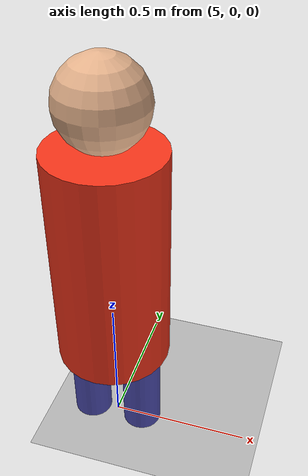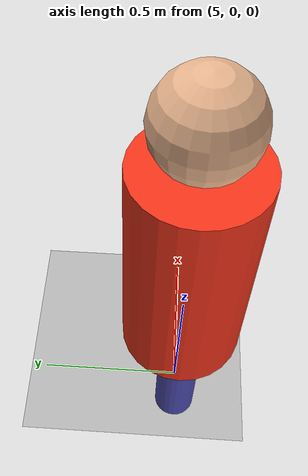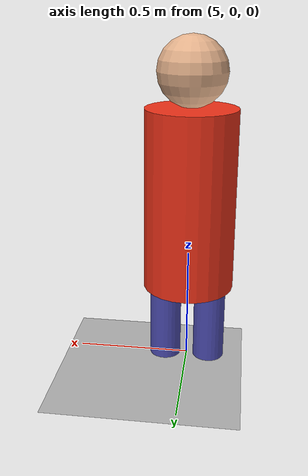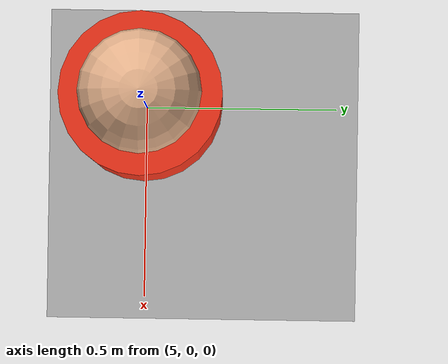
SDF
<?xml version="1.0"?>
<sdf version="1.9">
  <world name="go2_empty">

    <!-- Gravity -->
    <gravity>0 0 -9.81</gravity>

    <!-- Physics (ODE, 500 Hz) -->
    <physics name="default_physics" type="ode">
      <max_step_size>0.002</max_step_size>
      <real_time_factor>1.0</real_time_factor>
      <real_time_update_rate>500</real_time_update_rate>
      <ode>
        <solver>
          <type>quick</type>
          <iters>150</iters>
          <sor>1.3</sor>
        </solver>
        <constraints>
          <cfm>0.0</cfm>
          <erp>0.2</erp>
        </constraints>
      </ode>
    </physics>

    <!-- Plugins -->
    <plugin filename="gz-sim-physics-system"
            name="gz::sim::systems::Physics"/>
    <plugin filename="gz-sim-user-commands-system"
            name="gz::sim::systems::UserCommands"/>
    <plugin filename="gz-sim-scene-broadcaster-system"
            name="gz::sim::systems::SceneBroadcaster"/>
    <plugin filename="gz-sim-contact-system"
            name="gz::sim::systems::Contact"/>
    <plugin filename="gz-sim-imu-system"
            name="gz::sim::systems::Imu"/>
    <plugin filename="gz-sim-sensors-system"
            name="gz::sim::systems::Sensors">
      <render_engine>ogre2</render_engine>
    </plugin>

    <!-- Sun -->
    <light type="directional" name="sun">
      <cast_shadows>true</cast_shadows>
      <pose>0 0 10 0 0 0</pose>
      <diffuse>0.8 0.8 0.8 1</diffuse>
      <specular>0.2 0.2 0.2 1</specular>
      <direction>-0.5 0.1 -0.9</direction>
    </light>

    <!-- Ground plane -->
    <model name="ground_plane">
      <static>true</static>
      <link name="link">
        <collision name="collision">
          <geometry>
            <plane>
              <normal>0 0 1</normal>
              <size>100 100</size>
            </plane>
          </geometry>
          <surface>
            <friction>
              <ode>
                <mu>0.8</mu>
                <mu2>0.8</mu2>
              </ode>
            </friction>
          </surface>
        </collision>
        <visual name="visual">
          <geometry>
            <plane>
              <normal>0 0 1</normal>
              <size>100 100</size>
            </plane>
          </geometry>
          <material>
            <ambient>0.4 0.4 0.4 1</ambient>
            <diffuse>0.7 0.7 0.7 1</diffuse>
          </material>
        </visual>
      </link>
    </model>

    <model name="intruder">
      <pose>5 0 0 0 0 0</pose>
      <static>false</static>

      <link name="intruder_base">
        <!-- Torso -->
        <visual name="torso_visual">
          <pose>0 0 0.75 0 0 0</pose>
          <geometry><cylinder><radius>0.2</radius><length>0.8</length></cylinder></geometry>
          <material>
            <ambient>0.9 0.15 0.1 1</ambient>
            <diffuse>0.95 0.2 0.1 1</diffuse>
            <specular>0.3 0.05 0.02 1</specular>
          </material>
        </visual>
        <collision name="torso_collision">
          <pose>0 0 0.75 0 0 0</pose>
          <geometry><cylinder><radius>0.2</radius><length>0.8</length></cylinder></geometry>
        </collision>

        <!-- Head -->
        <visual name="head_visual">
          <pose>0 0 1.3 0 0 0</pose>
          <geometry><sphere><radius>0.15</radius></sphere></geometry>
          <material>
            <ambient>0.85 0.65 0.5 1</ambient>
            <diffuse>0.9 0.7 0.55 1</diffuse>
          </material>
        </visual>
        <collision name="head_collision">
          <pose>0 0 1.3 0 0 0</pose>
          <geometry><sphere><radius>0.15</radius></sphere></geometry>
        </collision>

        <!-- Left leg -->
        <visual name="left_leg_visual">
          <pose>0.1 0 0.2 0 0 0</pose>
          <geometry><cylinder><radius>0.07</radius><length>0.5</length></cylinder></geometry>
          <material>
            <ambient>0.2 0.2 0.6 1</ambient>
            <diffuse>0.3 0.3 0.7 1</diffuse>
          </material>
        </visual>
        <collision name="left_leg_collision">
          <pose>0.1 0 0.2 0 0 0</pose>
          <geometry><cylinder><radius>0.07</radius><length>0.5</length></cylinder></geometry>
        </collision>

        <!-- Right leg -->
        <visual name="right_leg_visual">
          <pose>-0.1 0 0.2 0 0 0</pose>
          <geometry><cylinder><radius>0.07</radius><length>0.5</length></cylinder></geometry>
          <material>
            <ambient>0.2 0.2 0.6 1</ambient>
            <diffuse>0.3 0.3 0.7 1</diffuse>
          </material>
        </visual>
        <collision name="right_leg_collision">
          <pose>-0.1 0 0.2 0 0 0</pose>
          <geometry><cylinder><radius>0.07</radius><length>0.5</length></cylinder></geometry>
        </collision>

        <inertial>
          <mass>70.0</mass>
          <inertia>
            <ixx>5.0</ixx><iyy>5.0</iyy><izz>1.0</izz>
            <ixy>0</ixy><ixz>0</ixz><iyz>0</iyz>
          </inertia>
        </inertial>
      </link>

      <!-- Keep the intruder upright (prevent toppling) using a planar joint approach:
           We'll let the external node handle position via gz service set_pose -->
    </model>

  </world>
</sdf>
